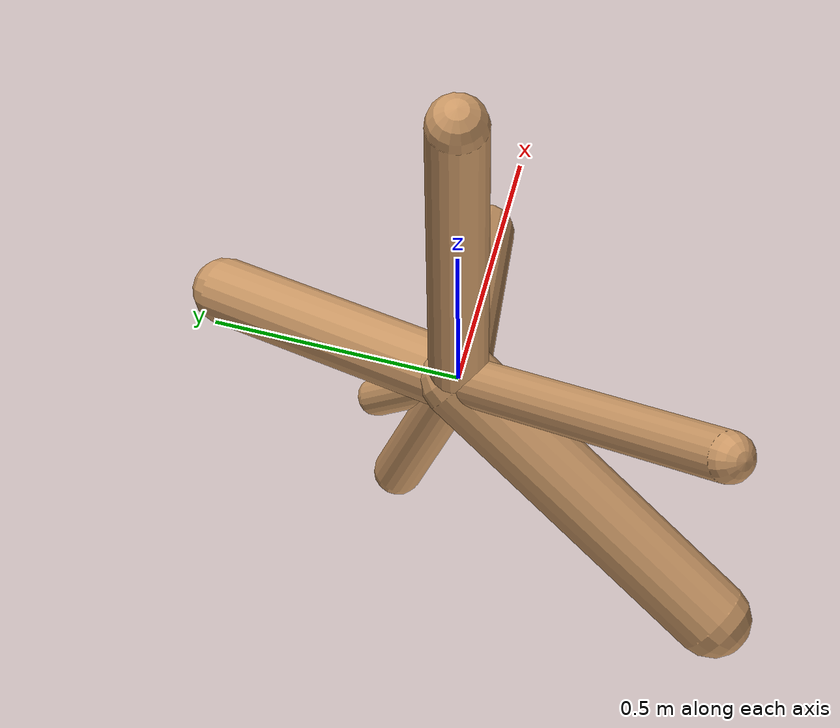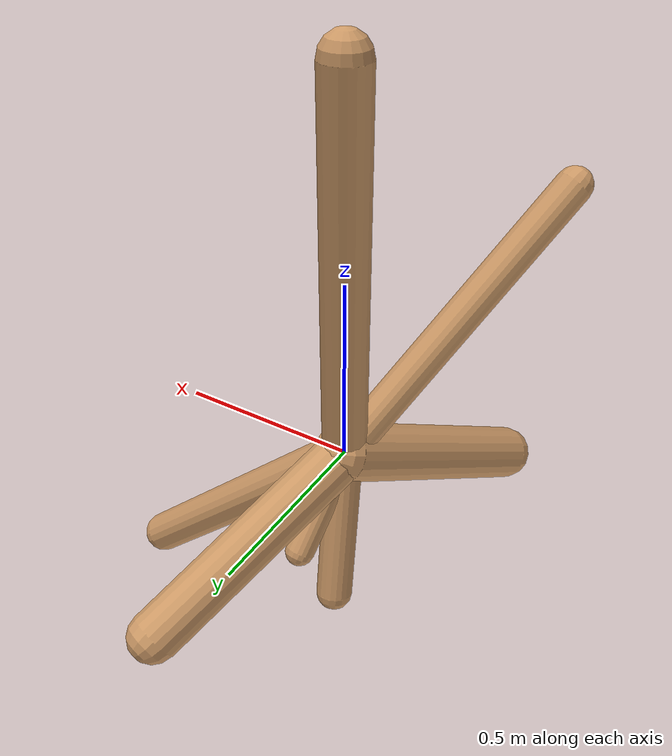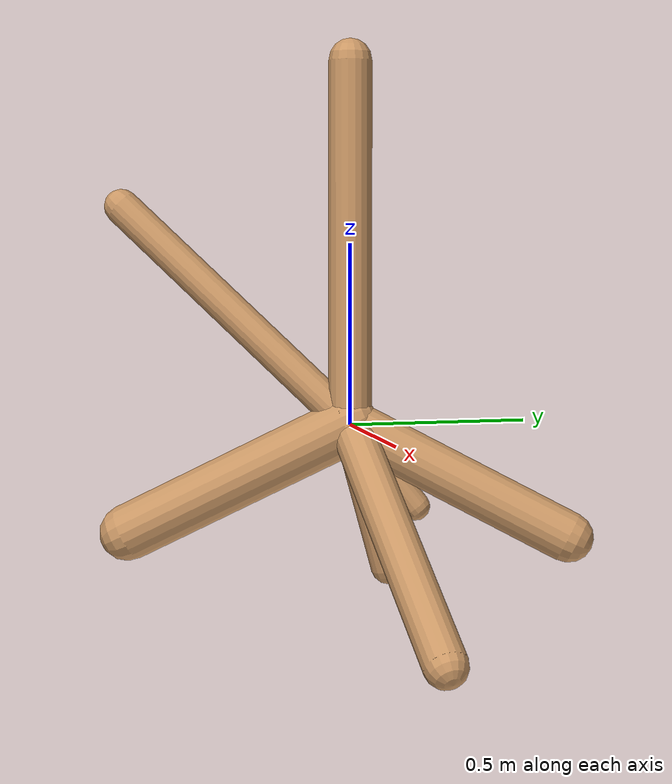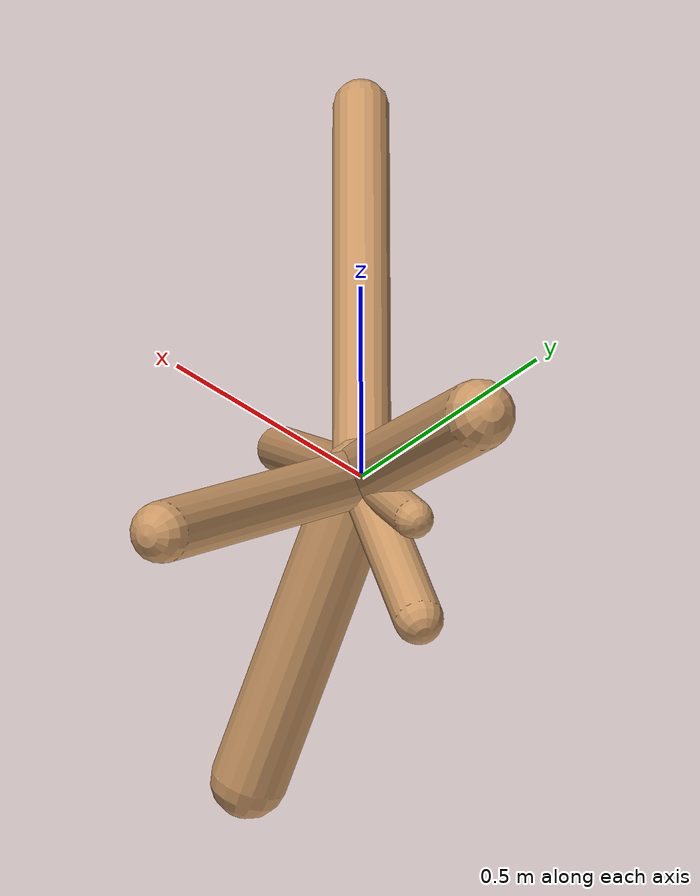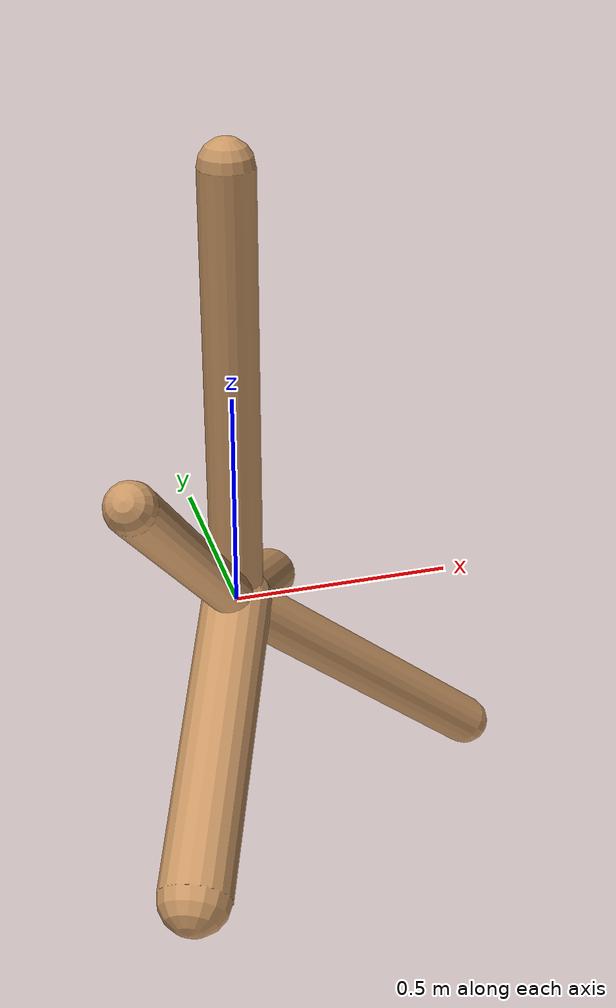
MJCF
<!--
                    joint_number: 6
                    -->
                    <mujoco model="randomrobot">
                        <compiler angle="degree" coordinate="global" inertiafromgeom="true"/>
                        <default>
                        <joint armature="0.01" damping=".1" limited="true"/>
                        <geom conaffinity="0" condim="3" contype="1" density="1000" friction="0.8 .1 .1" rgba="0.8 0.6 .4 1"/>
                        </default>
                        <option integrator="RK4" timestep="0.002"/>
                        <worldbody>
                    <body name='torso' pos='0.00 0.00 1.24'><geom fromto='0 0 0 0.00 0.00 1.00' name='torso_geom' size='0.06' type='capsule'/><inertial mass='0.3'/><body name='L0_D1' pos='0.00 0.00 0.08'><joint axis='1 0 0' name='L0_D1_joint' pos='0 0 0' range='89.98 122.26' type='hinge'/><geom fromto='0 0 0 -0.24 -0.59 -0.32' name='L0_D1_geom' size='0.08' type='capsule'/><inertial mass='0.3'/><body name='L1_D0' pos='-0.08 -0.20 -0.11'><joint axis='1 0 0' name='L1_D0_joint' pos='0 0 0' range='47.27 135.14' type='hinge'/><geom fromto='0 0 0 0.62 0.10 -0.54' name='L1_D0_geom' size='0.06' type='capsule'/><inertial mass='0.3'/></body><body name='L2_D0' pos='-0.22 -0.56 -0.30'><joint axis='0 1 0' name='L2_D0_joint' pos='0 0 0' range='15.03 98.50' type='hinge'/><geom fromto='0 0 0 -0.04 0.12 -0.41' name='L2_D0_geom' size='0.05' type='capsule'/><inertial mass='0.3'/></body><body name='L3_D0' pos='-0.13 -0.31 -0.17'><joint axis='1 0 0' name='L3_D0_joint' pos='0 0 0' range='46.43 171.24' type='hinge'/><geom fromto='0 0 0 0.22 0.56 -0.30' name='L3_D0_geom' size='0.07' type='capsule'/><inertial mass='0.3'/></body></body><body name='L4_D1' pos='0.00 0.00 0.77'><joint axis='0 1 0' name='L4_D1_joint' pos='0 0 0' range='144.09 169.04' type='hinge'/><geom fromto='0 0 0 -0.32 -0.59 0.60' name='L4_D1_geom' size='0.05' type='capsule'/><inertial mass='0.3'/><body name='L5_D0' pos='-0.12 -0.22 0.22'><joint axis='1 0 0' name='L5_D0_joint' pos='0 0 0' range='12.47 64.27' type='hinge'/><geom fromto='0 0 0 0.03 0.18 -0.23' name='L5_D0_geom' size='0.04' type='capsule'/><inertial mass='0.3'/></body></body></body>
                        </worldbody>
                    </mujoco>
